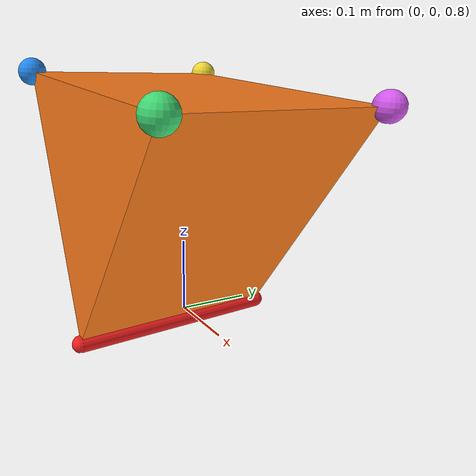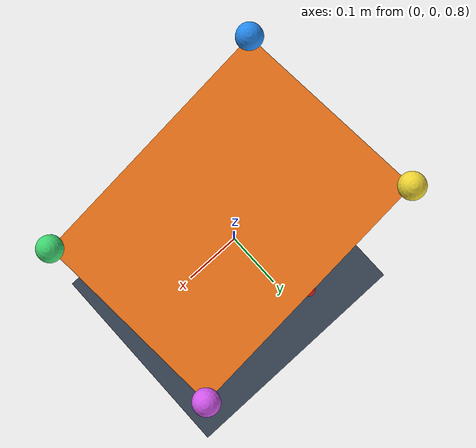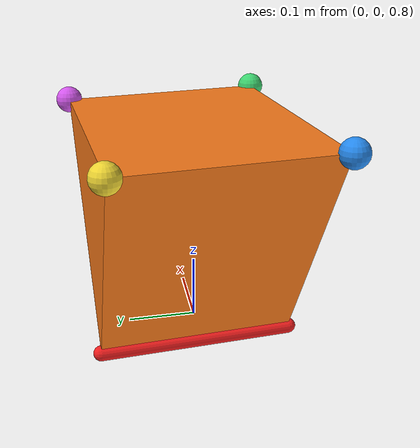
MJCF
<mujoco model="triangulo_invertido">
  <compiler angle="degree" autolimits="true"/>
  <option timestep="0.002" gravity="0 0 -9.81"/>

  <visual>
    <global offwidth="1280" offheight="720"/>
    <quality shadowsize="4096"/>
    <headlight ambient="0.35 0.35 0.35" diffuse="0.65 0.65 0.65" specular="0.05 0.05 0.05"/>
    <rgba haze="0.15 0.25 0.35 1"/>
    <!-- setas/discos de contato (flags mjVIS_CONTACT*): finos para não cobrir o objeto -->
    <scale contactwidth="0.08" contactheight="0.02" forcewidth="0.04"/>
    <map force="0.002"/>
  </visual>
  <statistic center="0 0 0.45" extent="1.7"/>

  <asset>
    <texture type="skybox" builtin="gradient" rgb1="0.50 0.72 0.95" rgb2="0.03 0.05 0.10" width="512" height="3072"/>
    <texture name="grade" type="2d" builtin="checker" rgb1="0.19 0.23 0.29" rgb2="0.27 0.32 0.39"
             width="512" height="512" mark="edge" markrgb="0.55 0.60 0.66"/>
    <material name="piso" texture="grade" texrepeat="5 5" texuniform="true" reflectance="0.12"/>
    <material name="laranja" rgba="0.96 0.47 0.10 1" specular="0.35" shininess="0.5"/>
    <mesh name="prisma" vertex="
      -0.20 -0.15  0.11547    0.20 -0.15  0.11547    0.00 -0.15 -0.23094
      -0.20  0.15  0.11547    0.20  0.15  0.11547    0.00  0.15 -0.23094"/>
  </asset>

  <custom>
    <numeric name="esperado_massa_kg"       data="20.7846"/>
    <numeric name="esperado_altura_repouso" data="0.11547"/>   <!-- raio inscrito = a/(2√3), apoiado numa face retangular -->
  </custom>

  <worldbody>
    <light name="sol" pos="1.5 -2.5 4" dir="-0.3 0.6 -1" type="directional" diffuse="0.85 0.85 0.85" specular="0.2 0.2 0.2"/>
    <camera name="frontal" pos="0 -2.15 0.60" xyaxes="1 0 0 0 0.04 1"/>

    <geom name="chao" type="plane" size="4 4 0.05" material="piso"
          friction="0.8 0.005 0.0001" solref="0.01 0.6"/>

    <body name="triangulo" pos="0 0 1.0" euler="0 7 4">
      <freejoint name="livre"/>
      <geom name="prisma" type="mesh" mesh="prisma" material="laranja"
            density="1000" friction="0.8 0.005 0.0001" solref="0.01 0.6"/>
      <!-- marcadores visuais (sites: sem massa e sem colisão): a aresta de baixo em vermelho e os cantos de cima em cores diferentes,
           para enxergar a rotação -->
      <site name="aresta"  type="capsule" fromto="0 -0.15 -0.23094  0 0.15 -0.23094" size="0.012" rgba="0.95 0.12 0.12 1"/>
      <site name="canto_a" type="sphere" pos="-0.20 -0.15 0.11547" size="0.02" rgba="0.15 0.55 0.95 1"/>
      <site name="canto_b" type="sphere" pos=" 0.20 -0.15 0.11547" size="0.02" rgba="0.25 0.85 0.45 1"/>
      <site name="canto_c" type="sphere" pos="-0.20  0.15 0.11547" size="0.02" rgba="0.95 0.85 0.20 1"/>
      <site name="canto_d" type="sphere" pos=" 0.20  0.15 0.11547" size="0.02" rgba="0.85 0.35 0.95 1"/>
    </body>
  </worldbody>
</mujoco>
